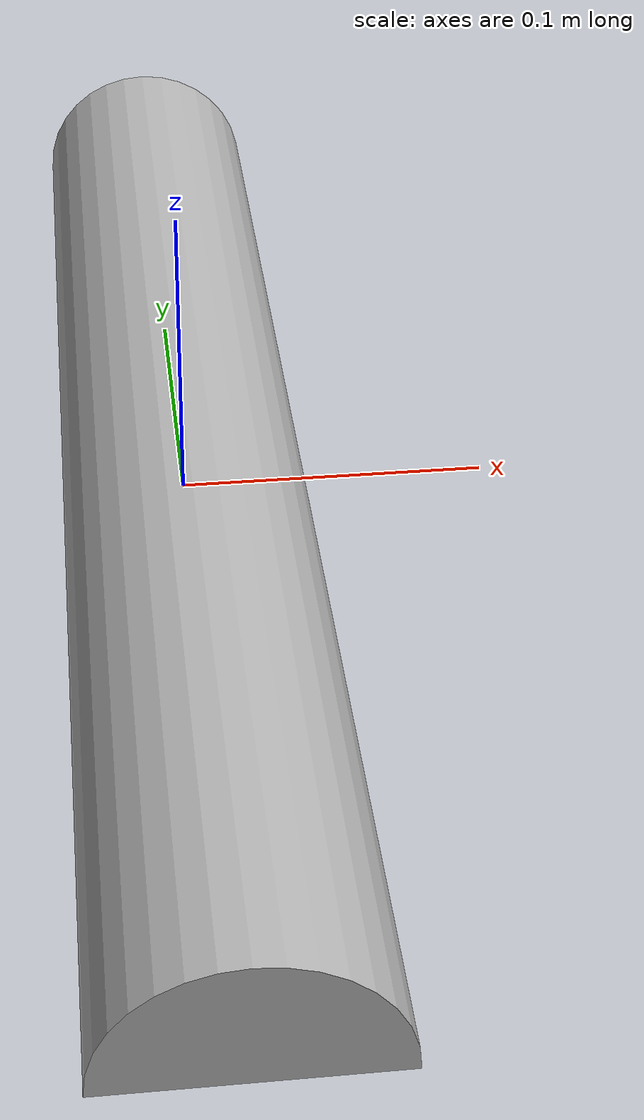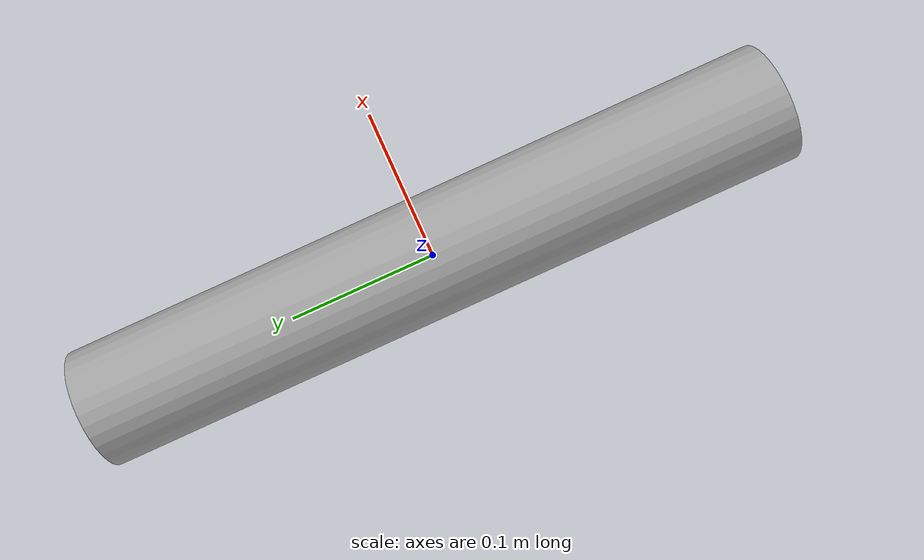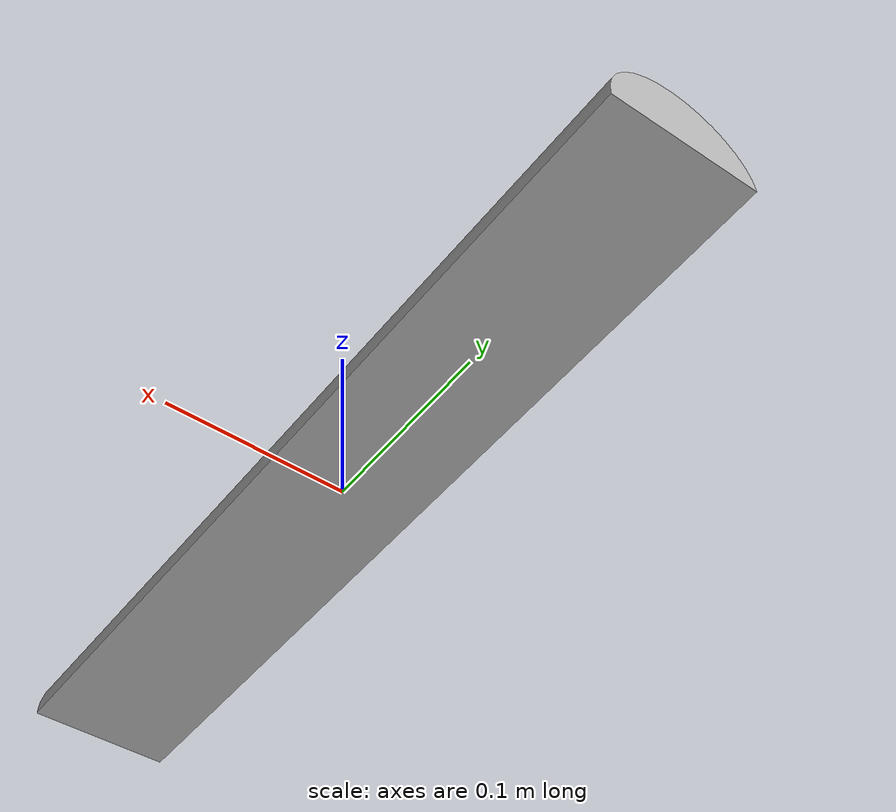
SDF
<?xml version="1.0" ?>
<sdf version="1.5">
  <model name="lombada">
    <link name="link">
      <collision name="collision">
        <geometry>
          <mesh>
            <scale>0.16 0.16 0.16</scale>
            <uri>model://lombada/meshes/lombada.stl</uri>
          </mesh>
        </geometry>
      </collision>
      <visual name="visual">
        <geometry>
          <mesh>
            <scale>0.16 0.16 0.16</scale>
            <uri>model://lombada/meshes/lombada.dae</uri>
          </mesh>
        </geometry>
      </visual>
    </link>
  </model>
</sdf>
